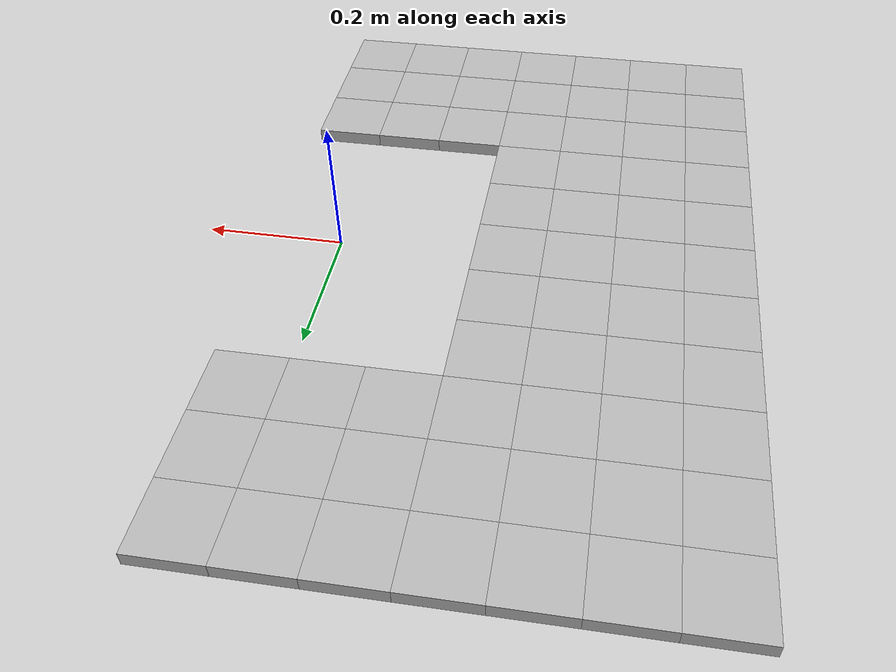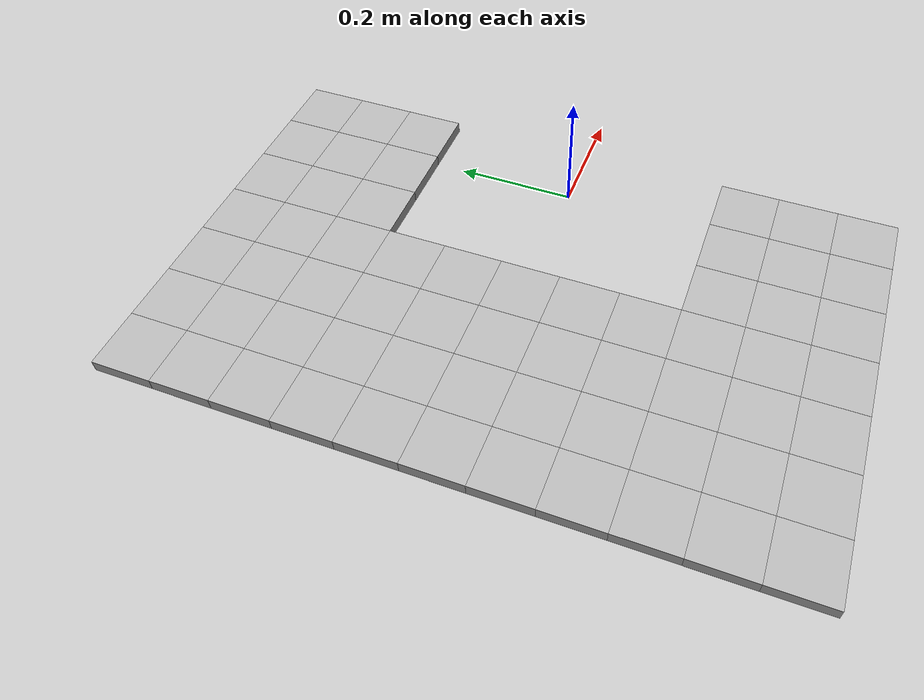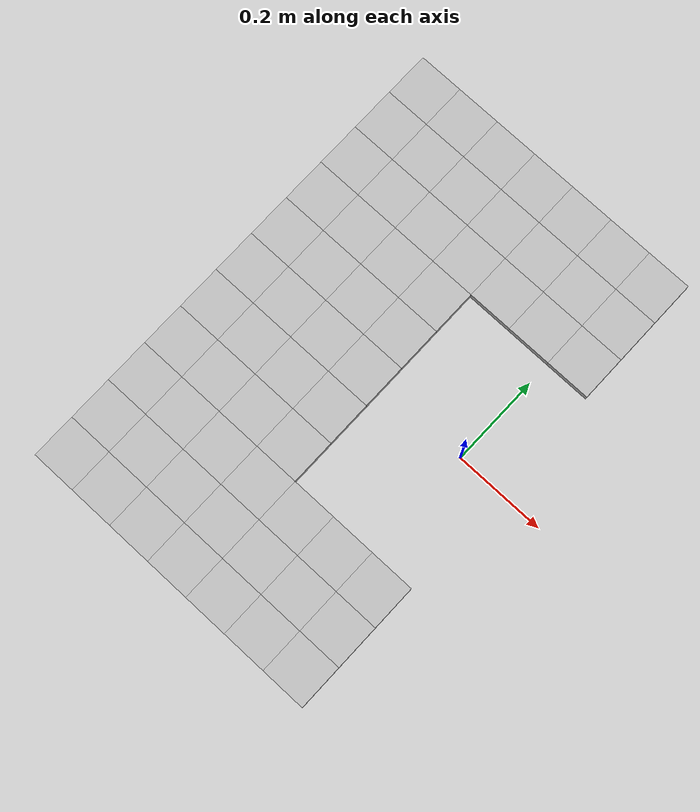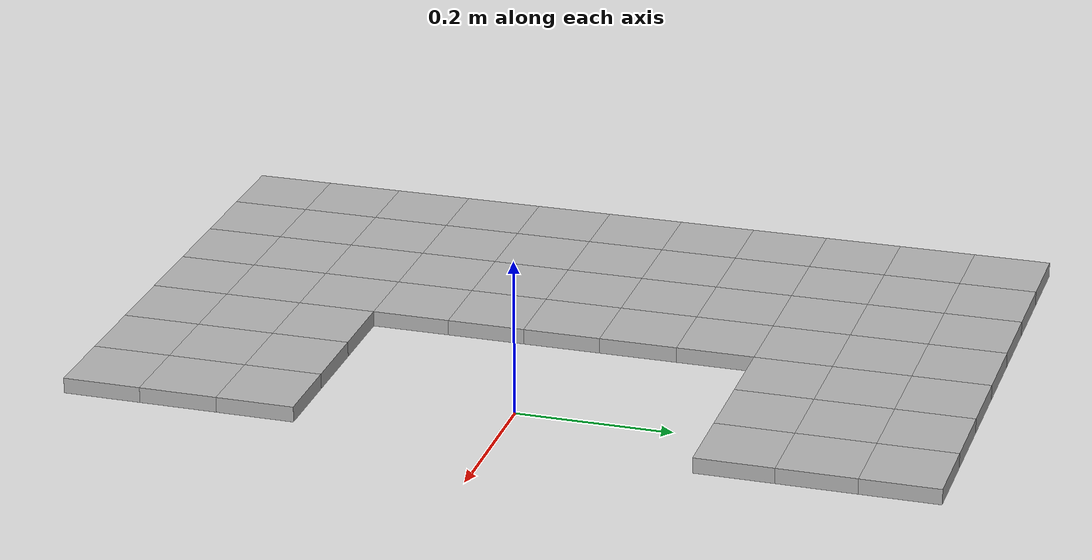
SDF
<sdf version="1.6">
 <model>
  <model name="object-golf-tile-0.0-0.0-new">
   <pose frame="tile-frame">-0.55 -0.5 0.01 0 0 0</pose>
   <link name="link_1">
    <inertial>
     <mass>0.0001</mass>
     <inertia><ixx>1e-6</ixx><ixy>0</ixy><ixz>0</ixz><iyy>1e-6</iyy><iyz>0</iyz><izz>1e-6</izz></inertia>
    </inertial>
    <visual name="visual">
     <geometry><box><size>0.1 0.1 0.02</size></box></geometry>
     <material>
      <ambient>0 0.6 0 0</ambient>
      <diffuse>0.7 0.7 0.7 1</diffuse>
      <specular>0.01 0.01 0.01 1</specular>
      <emissive>0 0 0 1</emissive>
     </material>
    </visual>
    <collision name="collision">
     <geometry><box><size>0.1 0.1 0.02</size></box></geometry>
     <surface><friction><ode><mu>1</mu><mu2>1</mu2></ode></friction></surface>
    </collision>
   </link>
   <static>1</static>
  </model>
  <model name="object-golf-tile-0.0-1.0-new">
   <pose frame="tile-frame">-0.55 -0.4 0.01 0 0 0</pose>
   <link name="link_1">
    <inertial>
     <mass>0.0001</mass>
     <inertia><ixx>1e-6</ixx><ixy>0</ixy><ixz>0</ixz><iyy>1e-6</iyy><iyz>0</iyz><izz>1e-6</izz></inertia>
    </inertial>
    <visual name="visual">
     <geometry><box><size>0.1 0.1 0.02</size></box></geometry>
     <material>
      <ambient>0 0.6 0 0</ambient>
      <diffuse>0.7 0.7 0.7 1</diffuse>
      <specular>0.01 0.01 0.01 1</specular>
      <emissive>0 0 0 1</emissive>
     </material>
    </visual>
    <collision name="collision">
     <geometry><box><size>0.1 0.1 0.02</size></box></geometry>
     <surface><friction><ode><mu>1</mu><mu2>1</mu2></ode></friction></surface>
    </collision>
   </link>
   <static>1</static>
  </model>
  <model name="object-golf-tile-0.0-2.0-new">
   <pose frame="tile-frame">-0.55 -0.3 0.01 0 0 0</pose>
   <link name="link_1">
    <inertial>
     <mass>0.0001</mass>
     <inertia><ixx>1e-6</ixx><ixy>0</ixy><ixz>0</ixz><iyy>1e-6</iyy><iyz>0</iyz><izz>1e-6</izz></inertia>
    </inertial>
    <visual name="visual">
     <geometry><box><size>0.1 0.1 0.02</size></box></geometry>
     <material>
      <ambient>0 0.6 0 0</ambient>
      <diffuse>0.7 0.7 0.7 1</diffuse>
      <specular>0.01 0.01 0.01 1</specular>
      <emissive>0 0 0 1</emissive>
     </material>
    </visual>
    <collision name="collision">
     <geometry><box><size>0.1 0.1 0.02</size></box></geometry>
     <surface><friction><ode><mu>1</mu><mu2>1</mu2></ode></friction></surface>
    </collision>
   </link>
   <static>1</static>
  </model>
  <model name="object-golf-tile-0.0-3.0-new">
   <pose frame="tile-frame">-0.55 -0.2 0.01 0 0 0</pose>
   <link name="link_1">
    <inertial>
     <mass>0.0001</mass>
     <inertia><ixx>1e-6</ixx><ixy>0</ixy><ixz>0</ixz><iyy>1e-6</iyy><iyz>0</iyz><izz>1e-6</izz></inertia>
    </inertial>
    <visual name="visual">
     <geometry><box><size>0.1 0.1 0.02</size></box></geometry>
     <material>
      <ambient>0 0.6 0 0</ambient>
      <diffuse>0.7 0.7 0.7 1</diffuse>
      <specular>0.01 0.01 0.01 1</specular>
      <emissive>0 0 0 1</emissive>
     </material>
    </visual>
    <collision name="collision">
     <geometry><box><size>0.1 0.1 0.02</size></box></geometry>
     <surface><friction><ode><mu>1</mu><mu2>1</mu2></ode></friction></surface>
    </collision>
   </link>
   <static>1</static>
  </model>
  <model name="object-golf-tile-0.0-4.0-new">
   <pose frame="tile-frame">-0.55 -0.1 0.01 0 0 0</pose>
   <link name="link_1">
    <inertial>
     <mass>0.0001</mass>
     <inertia><ixx>1e-6</ixx><ixy>0</ixy><ixz>0</ixz><iyy>1e-6</iyy><iyz>0</iyz><izz>1e-6</izz></inertia>
    </inertial>
    <visual name="visual">
     <geometry><box><size>0.1 0.1 0.02</size></box></geometry>
     <material>
      <ambient>0 0.6 0 0</ambient>
      <diffuse>0.7 0.7 0.7 1</diffuse>
      <specular>0.01 0.01 0.01 1</specular>
      <emissive>0 0 0 1</emissive>
     </material>
    </visual>
    <collision name="collision">
     <geometry><box><size>0.1 0.1 0.02</size></box></geometry>
     <surface><friction><ode><mu>1</mu><mu2>1</mu2></ode></friction></surface>
    </collision>
   </link>
   <static>1</static>
  </model>
  <model name="object-golf-tile-0.0-5.0-new">
   <pose frame="tile-frame">-0.55 0.0 0.01 0 0 0</pose>
   <link name="link_1">
    <inertial>
     <mass>0.0001</mass>
     <inertia><ixx>1e-6</ixx><ixy>0</ixy><ixz>0</ixz><iyy>1e-6</iyy><iyz>0</iyz><izz>1e-6</izz></inertia>
    </inertial>
    <visual name="visual">
     <geometry><box><size>0.1 0.1 0.02</size></box></geometry>
     <material>
      <ambient>0 0.6 0 0</ambient>
      <diffuse>0.7 0.7 0.7 1</diffuse>
      <specular>0.01 0.01 0.01 1</specular>
      <emissive>0 0 0 1</emissive>
     </material>
    </visual>
    <collision name="collision">
     <geometry><box><size>0.1 0.1 0.02</size></box></geometry>
     <surface><friction><ode><mu>1</mu><mu2>1</mu2></ode></friction></surface>
    </collision>
   </link>
   <static>1</static>
  </model>
  <model name="object-golf-tile-0.0-6.0-new">
   <pose frame="tile-frame">-0.55 0.1 0.01 0 0 0</pose>
   <link name="link_1">
    <inertial>
     <mass>0.0001</mass>
     <inertia><ixx>1e-6</ixx><ixy>0</ixy><ixz>0</ixz><iyy>1e-6</iyy><iyz>0</iyz><izz>1e-6</izz></inertia>
    </inertial>
    <visual name="visual">
     <geometry><box><size>0.1 0.1 0.02</size></box></geometry>
     <material>
      <ambient>0 0.6 0 0</ambient>
      <diffuse>0.7 0.7 0.7 1</diffuse>
      <specular>0.01 0.01 0.01 1</specular>
      <emissive>0 0 0 1</emissive>
     </material>
    </visual>
    <collision name="collision">
     <geometry><box><size>0.1 0.1 0.02</size></box></geometry>
     <surface><friction><ode><mu>1</mu><mu2>1</mu2></ode></friction></surface>
    </collision>
   </link>
   <static>1</static>
  </model>
  <model name="object-golf-tile-0.0-7.0-new">
   <pose frame="tile-frame">-0.55 0.2 0.01 0 0 0</pose>
   <link name="link_1">
    <inertial>
     <mass>0.0001</mass>
     <inertia><ixx>1e-6</ixx><ixy>0</ixy><ixz>0</ixz><iyy>1e-6</iyy><iyz>0</iyz><izz>1e-6</izz></inertia>
    </inertial>
    <visual name="visual">
     <geometry><box><size>0.1 0.1 0.02</size></box></geometry>
     <material>
      <ambient>0 0.6 0 0</ambient>
      <diffuse>0.7 0.7 0.7 1</diffuse>
      <specular>0.01 0.01 0.01 1</specular>
      <emissive>0 0 0 1</emissive>
     </material>
    </visual>
    <collision name="collision">
     <geometry><box><size>0.1 0.1 0.02</size></box></geometry>
     <surface><friction><ode><mu>1</mu><mu2>1</mu2></ode></friction></surface>
    </collision>
   </link>
   <static>1</static>
  </model>
  <model name="object-golf-tile-0.0-8.0-new">
   <pose frame="tile-frame">-0.55 0.3 0.01 0 0 0</pose>
   <link name="link_1">
    <inertial>
     <mass>0.0001</mass>
     <inertia><ixx>1e-6</ixx><ixy>0</ixy><ixz>0</ixz><iyy>1e-6</iyy><iyz>0</iyz><izz>1e-6</izz></inertia>
    </inertial>
    <visual name="visual">
     <geometry><box><size>0.1 0.1 0.02</size></box></geometry>
     <material>
      <ambient>0 0.6 0 0</ambient>
      <diffuse>0.7 0.7 0.7 1</diffuse>
      <specular>0.01 0.01 0.01 1</specular>
      <emissive>0 0 0 1</emissive>
     </material>
    </visual>
    <collision name="collision">
     <geometry><box><size>0.1 0.1 0.02</size></box></geometry>
     <surface><friction><ode><mu>1</mu><mu2>1</mu2></ode></friction></surface>
    </collision>
   </link>
   <static>1</static>
  </model>
  <model name="object-golf-tile-0.0-9.0-new">
   <pose frame="tile-frame">-0.55 0.4 0.01 0 0 0</pose>
   <link name="link_1">
    <inertial>
     <mass>0.0001</mass>
     <inertia><ixx>1e-6</ixx><ixy>0</ixy><ixz>0</ixz><iyy>1e-6</iyy><iyz>0</iyz><izz>1e-6</izz></inertia>
    </inertial>
    <visual name="visual">
     <geometry><box><size>0.1 0.1 0.02</size></box></geometry>
     <material>
      <ambient>0 0.6 0 0</ambient>
      <diffuse>0.7 0.7 0.7 1</diffuse>
      <specular>0.01 0.01 0.01 1</specular>
      <emissive>0 0 0 1</emissive>
     </material>
    </visual>
    <collision name="collision">
     <geometry><box><size>0.1 0.1 0.02</size></box></geometry>
     <surface><friction><ode><mu>1</mu><mu2>1</mu2></ode></friction></surface>
    </collision>
   </link>
   <static>1</static>
  </model>
  <model name="object-golf-tile-0.0-10.0-new">
   <pose frame="tile-frame">-0.55 0.5 0.01 0 0 0</pose>
   <link name="link_1">
    <inertial>
     <mass>0.0001</mass>
     <inertia><ixx>1e-6</ixx><ixy>0</ixy><ixz>0</ixz><iyy>1e-6</iyy><iyz>0</iyz><izz>1e-6</izz></inertia>
    </inertial>
    <visual name="visual">
     <geometry><box><size>0.1 0.1 0.02</size></box></geometry>
     <material>
      <ambient>0 0.6 0 0</ambient>
      <diffuse>0.7 0.7 0.7 1</diffuse>
      <specular>0.01 0.01 0.01 1</specular>
      <emissive>0 0 0 1</emissive>
     </material>
    </visual>
    <collision name="collision">
     <geometry><box><size>0.1 0.1 0.02</size></box></geometry>
     <surface><friction><ode><mu>1</mu><mu2>1</mu2></ode></friction></surface>
    </collision>
   </link>
   <static>1</static>
  </model>
  <model name="object-golf-tile-1.0-0.0-new">
   <pose frame="tile-frame">-0.45 -0.5 0.01 0 0 0</pose>
   <link name="link_1">
    <inertial>
     <mass>0.0001</mass>
     <inertia><ixx>1e-6</ixx><ixy>0</ixy><ixz>0</ixz><iyy>1e-6</iyy><iyz>0</iyz><izz>1e-6</izz></inertia>
    </inertial>
    <visual name="visual">
     <geometry><box><size>0.1 0.1 0.02</size></box></geometry>
     <material>
      <ambient>0 0.6 0 0</ambient>
      <diffuse>0.7 0.7 0.7 1</diffuse>
      <specular>0.01 0.01 0.01 1</specular>
      <emissive>0 0 0 1</emissive>
     </material>
    </visual>
    <collision name="collision">
     <geometry><box><size>0.1 0.1 0.02</size></box></geometry>
     <surface><friction><ode><mu>1</mu><mu2>1</mu2></ode></friction></surface>
    </collision>
   </link>
   <static>1</static>
  </model>
  <model name="object-golf-tile-1.0-1.0-new">
   <pose frame="tile-frame">-0.45 -0.4 0.01 0 0 0</pose>
   <link name="link_1">
    <inertial>
     <mass>0.0001</mass>
     <inertia><ixx>1e-6</ixx><ixy>0</ixy><ixz>0</ixz><iyy>1e-6</iyy><iyz>0</iyz><izz>1e-6</izz></inertia>
    </inertial>
    <visual name="visual">
     <geometry><box><size>0.1 0.1 0.02</size></box></geometry>
     <material>
      <ambient>0 0.6 0 0</ambient>
      <diffuse>0.7 0.7 0.7 1</diffuse>
      <specular>0.01 0.01 0.01 1</specular>
      <emissive>0 0 0 1</emissive>
     </material>
    </visual>
    <collision name="collision">
     <geometry><box><size>0.1 0.1 0.02</size></box></geometry>
     <surface><friction><ode><mu>1</mu><mu2>1</mu2></ode></friction></surface>
    </collision>
   </link>
   <static>1</static>
  </model>
  <model name="object-golf-tile-1.0-2.0-new">
   <pose frame="tile-frame">-0.45 -0.3 0.01 0 0 0</pose>
   <link name="link_1">
    <inertial>
     <mass>0.0001</mass>
     <inertia><ixx>1e-6</ixx><ixy>0</ixy><ixz>0</ixz><iyy>1e-6</iyy><iyz>0</iyz><izz>1e-6</izz></inertia>
    </inertial>
    <visual name="visual">
     <geometry><box><size>0.1 0.1 0.02</size></box></geometry>
     <material>
      <ambient>0 0.6 0 0</ambient>
      <diffuse>0.7 0.7 0.7 1</diffuse>
      <specular>0.01 0.01 0.01 1</specular>
      <emissive>0 0 0 1</emissive>
     </material>
    </visual>
    <collision name="collision">
     <geometry><box><size>0.1 0.1 0.02</size></box></geometry>
     <surface><friction><ode><mu>1</mu><mu2>1</mu2></ode></friction></surface>
    </collision>
   </link>
   <static>1</static>
  </model>
  <model name="object-golf-tile-1.0-3.0-new">
   <pose frame="tile-frame">-0.45 -0.2 0.01 0 0 0</pose>
   <link name="link_1">
    <inertial>
     <mass>0.0001</mass>
     <inertia><ixx>1e-6</ixx><ixy>0</ixy><ixz>0</ixz><iyy>1e-6</iyy><iyz>0</iyz><izz>1e-6</izz></inertia>
    </inertial>
    <visual name="visual">
     <geometry><box><size>0.1 0.1 0.02</size></box></geometry>
     <material>
      <ambient>0 0.6 0 0</ambient>
      <diffuse>0.7 0.7 0.7 1</diffuse>
      <specular>0.01 0.01 0.01 1</specular>
      <emissive>0 0 0 1</emissive>
     </material>
    </visual>
    <collision name="collision">
     <geometry><box><size>0.1 0.1 0.02</size></box></geometry>
     <surface><friction><ode><mu>1</mu><mu2>1</mu2></ode></friction></surface>
    </collision>
   </link>
   <static>1</static>
  </model>
  <model name="object-golf-tile-1.0-4.0-new">
   <pose frame="tile-frame">-0.45 -0.1 0.01 0 0 0</pose>
   <link name="link_1">
    <inertial>
     <mass>0.0001</mass>
     <inertia><ixx>1e-6</ixx><ixy>0</ixy><ixz>0</ixz><iyy>1e-6</iyy><iyz>0</iyz><izz>1e-6</izz></inertia>
    </inertial>
    <visual name="visual">
     <geometry><box><size>0.1 0.1 0.02</size></box></geometry>
     <material>
      <ambient>0 0.6 0 0</ambient>
      <diffuse>0.7 0.7 0.7 1</diffuse>
      <specular>0.01 0.01 0.01 1</specular>
      <emissive>0 0 0 1</emissive>
     </material>
    </visual>
    <collision name="collision">
     <geometry><box><size>0.1 0.1 0.02</size></box></geometry>
     <surface><friction><ode><mu>1</mu><mu2>1</mu2></ode></friction></surface>
    </collision>
   </link>
   <static>1</static>
  </model>
  <model name="object-golf-tile-1.0-5.0-new">
   <pose frame="tile-frame">-0.45 0.0 0.01 0 0 0</pose>
   <link name="link_1">
    <inertial>
     <mass>0.0001</mass>
     <inertia><ixx>1e-6</ixx><ixy>0</ixy><ixz>0</ixz><iyy>1e-6</iyy><iyz>0</iyz><izz>1e-6</izz></inertia>
    </inertial>
    <visual name="visual">
     <geometry><box><size>0.1 0.1 0.02</size></box></geometry>
     <material>
      <ambient>0 0.6 0 0</ambient>
      <diffuse>0.7 0.7 0.7 1</diffuse>
      <specular>0.01 0.01 0.01 1</specular>
      <emissive>0 0 0 1</emissive>
     </material>
    </visual>
    <collision name="collision">
     <geometry><box><size>0.1 0.1 0.02</size></box></geometry>
     <surface><friction><ode><mu>1</mu><mu2>1</mu2></ode></friction></surface>
    </collision>
   </link>
   <static>1</static>
  </model>
  <model name="object-golf-tile-1.0-6.0-new">
   <pose frame="tile-frame">-0.45 0.1 0.01 0 0 0</pose>
   <link name="link_1">
    <inertial>
     <mass>0.0001</mass>
     <inertia><ixx>1e-6</ixx><ixy>0</ixy><ixz>0</ixz><iyy>1e-6</iyy><iyz>0</iyz><izz>1e-6</izz></inertia>
    </inertial>
    <visual name="visual">
     <geometry><box><size>0.1 0.1 0.02</size></box></geometry>
     <material>
      <ambient>0 0.6 0 0</ambient>
      <diffuse>0.7 0.7 0.7 1</diffuse>
      <specular>0.01 0.01 0.01 1</specular>
      <emissive>0 0 0 1</emissive>
     </material>
    </visual>
    <collision name="collision">
     <geometry><box><size>0.1 0.1 0.02</size></box></geometry>
     <surface><friction><ode><mu>1</mu><mu2>1</mu2></ode></friction></surface>
    </collision>
   </link>
   <static>1</static>
  </model>
  <model name="object-golf-tile-1.0-7.0-new">
   <pose frame="tile-frame">-0.45 0.2 0.01 0 0 0</pose>
   <link name="link_1">
    <inertial>
     <mass>0.0001</mass>
     <inertia><ixx>1e-6</ixx><ixy>0</ixy><ixz>0</ixz><iyy>1e-6</iyy><iyz>0</iyz><izz>1e-6</izz></inertia>
    </inertial>
    <visual name="visual">
     <geometry><box><size>0.1 0.1 0.02</size></box></geometry>
     <material>
      <ambient>0 0.6 0 0</ambient>
      <diffuse>0.7 0.7 0.7 1</diffuse>
      <specular>0.01 0.01 0.01 1</specular>
      <emissive>0 0 0 1</emissive>
     </material>
    </visual>
    <collision name="collision">
     <geometry><box><size>0.1 0.1 0.02</size></box></geometry>
     <surface><friction><ode><mu>1</mu><mu2>1</mu2></ode></friction></surface>
    </collision>
   </link>
   <static>1</static>
  </model>
  <model name="object-golf-tile-1.0-8.0-new">
   <pose frame="tile-frame">-0.45 0.3 0.01 0 0 0</pose>
   <link name="link_1">
    <inertial>
     <mass>0.0001</mass>
     <inertia><ixx>1e-6</ixx><ixy>0</ixy><ixz>0</ixz><iyy>1e-6</iyy><iyz>0</iyz><izz>1e-6</izz></inertia>
    </inertial>
    <visual name="visual">
     <geometry><box><size>0.1 0.1 0.02</size></box></geometry>
     <material>
      <ambient>0 0.6 0 0</ambient>
      <diffuse>0.7 0.7 0.7 1</diffuse>
      <specular>0.01 0.01 0.01 1</specular>
      <emissive>0 0 0 1</emissive>
     </material>
    </visual>
    <collision name="collision">
     <geometry><box><size>0.1 0.1 0.02</size></box></geometry>
     <surface><friction><ode><mu>1</mu><mu2>1</mu2></ode></friction></surface>
    </collision>
   </link>
   <static>1</static>
  </model>
  <model name="object-golf-tile-1.0-9.0-new">
   <pose frame="tile-frame">-0.45 0.4 0.01 0 0 0</pose>
   <link name="link_1">
    <inertial>
     <mass>0.0001</mass>
     <inertia><ixx>1e-6</ixx><ixy>0</ixy><ixz>0</ixz><iyy>1e-6</iyy><iyz>0</iyz><izz>1e-6</izz></inertia>
    </inertial>
    <visual name="visual">
     <geometry><box><size>0.1 0.1 0.02</size></box></geometry>
     <material>
      <ambient>0 0.6 0 0</ambient>
      <diffuse>0.7 0.7 0.7 1</diffuse>
      <specular>0.01 0.01 0.01 1</specular>
      <emissive>0 0 0 1</emissive>
     </material>
    </visual>
    <collision name="collision">
     <geometry><box><size>0.1 0.1 0.02</size></box></geometry>
     <surface><friction><ode><mu>1</mu><mu2>1</mu2></ode></friction></surface>
    </collision>
   </link>
   <static>1</static>
  </model>
  <model name="object-golf-tile-1.0-10.0-new">
   <pose frame="tile-frame">-0.45 0.5 0.01 0 0 0</pose>
   <link name="link_1">
    <inertial>
     <mass>0.0001</mass>
     <inertia><ixx>1e-6</ixx><ixy>0</ixy><ixz>0</ixz><iyy>1e-6</iyy><iyz>0</iyz><izz>1e-6</izz></inertia>
    </inertial>
    <visual name="visual">
     <geometry><box><size>0.1 0.1 0.02</size></box></geometry>
     <material>
      <ambient>0 0.6 0 0</ambient>
      <diffuse>0.7 0.7 0.7 1</diffuse>
      <specular>0.01 0.01 0.01 1</specular>
      <emissive>0 0 0 1</emissive>
     </material>
    </visual>
    <collision name="collision">
     <geometry><box><size>0.1 0.1 0.02</size></box></geometry>
     <surface><friction><ode><mu>1</mu><mu2>1</mu2></ode></friction></surface>
    </collision>
   </link>
   <static>1</static>
  </model>
  <model name="object-golf-tile-2.0-0.0-new">
   <pose frame="tile-frame">-0.35 -0.5 0.01 0 0 0</pose>
   <link name="link_1">
    <inertial>
     <mass>0.0001</mass>
     <inertia><ixx>1e-6</ixx><ixy>0</ixy><ixz>0</ixz><iyy>1e-6</iyy><iyz>0</iyz><izz>1e-6</izz></inertia>
    </inertial>
    <visual name="visual">
     <geometry><box><size>0.1 0.1 0.02</size></box></geometry>
     <material>
      <ambient>0 0.6 0 0</ambient>
      <diffuse>0.7 0.7 0.7 1</diffuse>
      <specular>0.01 0.01 0.01 1</specular>
      <emissive>0 0 0 1</emissive>
     </material>
    </visual>
    <collision name="collision">
     <geometry><box><size>0.1 0.1 0.02</size></box></geometry>
     <surface><friction><ode><mu>1</mu><mu2>1</mu2></ode></friction></surface>
    </collision>
   </link>
   <static>1</static>
  </model>
  <model name="object-golf-tile-2.0-1.0-new">
   <pose frame="tile-frame">-0.35 -0.4 0.01 0 0 0</pose>
   <link name="link_1">
    <inertial>
     <mass>0.0001</mass>
     <inertia><ixx>1e-6</ixx><ixy>0</ixy><ixz>0</ixz><iyy>1e-6</iyy><iyz>0</iyz><izz>1e-6</izz></inertia>
    </inertial>
    <visual name="visual">
     <geometry><box><size>0.1 0.1 0.02</size></box></geometry>
     <material>
      <ambient>0 0.6 0 0</ambient>
      <diffuse>0.7 0.7 0.7 1</diffuse>
      <specular>0.01 0.01 0.01 1</specular>
      <emissive>0 0 0 1</emissive>
     </material>
    </visual>
    <collision name="collision">
     <geometry><box><size>0.1 0.1 0.02</size></box></geometry>
     <surface><friction><ode><mu>1</mu><mu2>1</mu2></ode></friction></surface>
    </collision>
   </link>
   <static>1</static>
  </model>
  <model name="object-golf-tile-2.0-2.0-new">
   <pose frame="tile-frame">-0.35 -0.3 0.01 0 0 0</pose>
   <link name="link_1">
    <inertial>
     <mass>0.0001</mass>
     <inertia><ixx>1e-6</ixx><ixy>0</ixy><ixz>0</ixz><iyy>1e-6</iyy><iyz>0</iyz><izz>1e-6</izz></inertia>
    </inertial>
    <visual name="visual">
     <geometry><box><size>0.1 0.1 0.02</size></box></geometry>
     <material>
      <ambient>0 0.6 0 0</ambient>
      <diffuse>0.7 0.7 0.7 1</diffuse>
      <specular>0.01 0.01 0.01 1</specular>
      <emissive>0 0 0 1</emissive>
     </material>
    </visual>
    <collision name="collision">
     <geometry><box><size>0.1 0.1 0.02</size></box></geometry>
     <surface><friction><ode><mu>1</mu><mu2>1</mu2></ode></friction></surface>
    </collision>
   </link>
   <static>1</static>
  </model>
  <model name="object-golf-tile-2.0-3.0-new">
   <pose frame="tile-frame">-0.35 -0.2 0.01 0 0 0</pose>
   <link name="link_1">
    <inertial>
     <mass>0.0001</mass>
     <inertia><ixx>1e-6</ixx><ixy>0</ixy><ixz>0</ixz><iyy>1e-6</iyy><iyz>0</iyz><izz>1e-6</izz></inertia>
    </inertial>
    <visual name="visual">
     <geometry><box><size>0.1 0.1 0.02</size></box></geometry>
     <material>
      <ambient>0 0.6 0 0</ambient>
      <diffuse>0.7 0.7 0.7 1</diffuse>
      <specular>0.01 0.01 0.01 1</specular>
      <emissive>0 0 0 1</emissive>
     </material>
    </visual>
    <collision name="collision">
     <geometry><box><size>0.1 0.1 0.02</size></box></geometry>
     <surface><friction><ode><mu>1</mu><mu2>1</mu2></ode></friction></surface>
    </collision>
   </link>
   <static>1</static>
  </model>
  <model name="object-golf-tile-2.0-4.0-new">
   <pose frame="tile-frame">-0.35 -0.1 0.01 0 0 0</pose>
   <link name="link_1">
    <inertial>
     <mass>0.0001</mass>
     <inertia><ixx>1e-6</ixx><ixy>0</ixy><ixz>0</ixz><iyy>1e-6</iyy><iyz>0</iyz><izz>1e-6</izz></inertia>
    </inertial>
    <visual name="visual">
     <geometry><box><size>0.1 0.1 0.02</size></box></geometry>
     <material>
      <ambient>0 0.6 0 0</ambient>
      <diffuse>0.7 0.7 0.7 1</diffuse>
      <specular>0.01 0.01 0.01 1</specular>
      <emissive>0 0 0 1</emissive>
     </material>
    </visual>
    <collision name="collision">
     <geometry><box><size>0.1 0.1 0.02</size></box></geometry>
     <surface><friction><ode><mu>1</mu><mu2>1</mu2></ode></friction></surface>
    </collision>
   </link>
   <static>1</static>
  </model>
  <model name="object-golf-tile-2.0-5.0-new">
   <pose frame="tile-frame">-0.35 0.0 0.01 0 0 0</pose>
   <link name="link_1">
    <inertial>
     <mass>0.0001</mass>
     <inertia><ixx>1e-6</ixx><ixy>0</ixy><ixz>0</ixz><iyy>1e-6</iyy><iyz>0</iyz><izz>1e-6</izz></inertia>
    </inertial>
    <visual name="visual">
     <geometry><box><size>0.1 0.1 0.02</size></box></geometry>
     <material>
      <ambient>0 0.6 0 0</ambient>
      <diffuse>0.7 0.7 0.7 1</diffuse>
      <specular>0.01 0.01 0.01 1</specular>
      <emissive>0 0 0 1</emissive>
     </material>
    </visual>
    <collision name="collision">
     <geometry><box><size>0.1 0.1 0.02</size></box></geometry>
     <surface><friction><ode><mu>1</mu><mu2>1</mu2></ode></friction></surface>
    </collision>
   </link>
   <static>1</static>
  </model>
  <model name="object-golf-tile-2.0-6.0-new">
   <pose frame="tile-frame">-0.35 0.1 0.01 0 0 0</pose>
   <link name="link_1">
    <inertial>
     <mass>0.0001</mass>
     <inertia><ixx>1e-6</ixx><ixy>0</ixy><ixz>0</ixz><iyy>1e-6</iyy><iyz>0</iyz><izz>1e-6</izz></inertia>
    </inertial>
    <visual name="visual">
     <geometry><box><size>0.1 0.1 0.02</size></box></geometry>
     <material>
      <ambient>0 0.6 0 0</ambient>
      <diffuse>0.7 0.7 0.7 1</diffuse>
      <specular>0.01 0.01 0.01 1</specular>
      <emissive>0 0 0 1</emissive>
     </material>
    </visual>
    <collision name="collision">
     <geometry><box><size>0.1 0.1 0.02</size></box></geometry>
     <surface><friction><ode><mu>1</mu><mu2>1</mu2></ode></friction></surface>
    </collision>
   </link>
   <static>1</static>
  </model>
  <model name="object-golf-tile-2.0-7.0-new">
   <pose frame="tile-frame">-0.35 0.2 0.01 0 0 0</pose>
   <link name="link_1">
    <inertial>
     <mass>0.0001</mass>
     <inertia><ixx>1e-6</ixx><ixy>0</ixy><ixz>0</ixz><iyy>1e-6</iyy><iyz>0</iyz><izz>1e-6</izz></inertia>
    </inertial>
    <visual name="visual">
     <geometry><box><size>0.1 0.1 0.02</size></box></geometry>
     <material>
      <ambient>0 0.6 0 0</ambient>
      <diffuse>0.7 0.7 0.7 1</diffuse>
      <specular>0.01 0.01 0.01 1</specular>
      <emissive>0 0 0 1</emissive>
     </material>
    </visual>
    <collision name="collision">
     <geometry><box><size>0.1 0.1 0.02</size></box></geometry>
     <surface><friction><ode><mu>1</mu><mu2>1</mu2></ode></friction></surface>
    </collision>
   </link>
   <static>1</static>
  </model>
  <model name="object-golf-tile-2.0-8.0-new">
   <pose frame="tile-frame">-0.35 0.3 0.01 0 0 0</pose>
   <link name="link_1">
    <inertial>
     <mass>0.0001</mass>
     <inertia><ixx>1e-6</ixx><ixy>0</ixy><ixz>0</ixz><iyy>1e-6</iyy><iyz>0</iyz><izz>1e-6</izz></inertia>
    </inertial>
    <visual name="visual">
     <geometry><box><size>0.1 0.1 0.02</size></box></geometry>
     <material>
      <ambient>0 0.6 0 0</ambient>
      <diffuse>0.7 0.7 0.7 1</diffuse>
      <specular>0.01 0.01 0.01 1</specular>
      <emissive>0 0 0 1</emissive>
     </material>
    </visual>
    <collision name="collision">
     <geometry><box><size>0.1 0.1 0.02</size></box></geometry>
     <surface><friction><ode><mu>1</mu><mu2>1</mu2></ode></friction></surface>
    </collision>
   </link>
   <static>1</static>
  </model>
  <model name="object-golf-tile-2.0-9.0-new">
   <pose frame="tile-frame">-0.35 0.4 0.01 0 0 0</pose>
   <link name="link_1">
    <inertial>
     <mass>0.0001</mass>
     <inertia><ixx>1e-6</ixx><ixy>0</ixy><ixz>0</ixz><iyy>1e-6</iyy><iyz>0</iyz><izz>1e-6</izz></inertia>
    </inertial>
    <visual name="visual">
     <geometry><box><size>0.1 0.1 0.02</size></box></geometry>
     <material>
      <ambient>0 0.6 0 0</ambient>
      <diffuse>0.7 0.7 0.7 1</diffuse>
      <specular>0.01 0.01 0.01 1</specular>
      <emissive>0 0 0 1</emissive>
     </material>
    </visual>
    <collision name="collision">
     <geometry><box><size>0.1 0.1 0.02</size></box></geometry>
     <surface><friction><ode><mu>1</mu><mu2>1</mu2></ode></friction></surface>
    </collision>
   </link>
   <static>1</static>
  </model>
  <model name="object-golf-tile-2.0-10.0-new">
   <pose frame="tile-frame">-0.35 0.5 0.01 0 0 0</pose>
   <link name="link_1">
    <inertial>
     <mass>0.0001</mass>
     <inertia><ixx>1e-6</ixx><ixy>0</ixy><ixz>0</ixz><iyy>1e-6</iyy><iyz>0</iyz><izz>1e-6</izz></inertia>
    </inertial>
    <visual name="visual">
     <geometry><box><size>0.1 0.1 0.02</size></box></geometry>
     <material>
      <ambient>0 0.6 0 0</ambient>
      <diffuse>0.7 0.7 0.7 1</diffuse>
      <specular>0.01 0.01 0.01 1</specular>
      <emissive>0 0 0 1</emissive>
     </material>
    </visual>
    <collision name="collision">
     <geometry><box><size>0.1 0.1 0.02</size></box></geometry>
     <surface><friction><ode><mu>1</mu><mu2>1</mu2></ode></friction></surface>
    </collision>
   </link>
   <static>1</static>
  </model>
  <model name="object-golf-tile-3.0-0.0-new">
   <pose frame="tile-frame">-0.25 -0.5 0.01 0 0 0</pose>
   <link name="link_1">
    <inertial>
     <mass>0.0001</mass>
     <inertia><ixx>1e-6</ixx><ixy>0</ixy><ixz>0</ixz><iyy>1e-6</iyy><iyz>0</iyz><izz>1e-6</izz></inertia>
    </inertial>
    <visual name="visual">
     <geometry><box><size>0.1 0.1 0.02</size></box></geometry>
     <material>
      <ambient>0 0.6 0 0</ambient>
      <diffuse>0.7 0.7 0.7 1</diffuse>
      <specular>0.01 0.01 0.01 1</specular>
      <emissive>0 0 0 1</emissive>
     </material>
    </visual>
    <collision name="collision">
     <geometry><box><size>0.1 0.1 0.02</size></box></geometry>
     <surface><friction><ode><mu>1</mu><mu2>1</mu2></ode></friction></surface>
    </collision>
   </link>
   <static>1</static>
  </model>
  <model name="object-golf-tile-3.0-1.0-new">
   <pose frame="tile-frame">-0.25 -0.4 0.01 0 0 0</pose>
   <link name="link_1">
    <inertial>
     <mass>0.0001</mass>
     <inertia><ixx>1e-6</ixx><ixy>0</ixy><ixz>0</ixz><iyy>1e-6</iyy><iyz>0</iyz><izz>1e-6</izz></inertia>
    </inertial>
    <visual name="visual">
     <geometry><box><size>0.1 0.1 0.02</size></box></geometry>
     <material>
      <ambient>0 0.6 0 0</ambient>
      <diffuse>0.7 0.7 0.7 1</diffuse>
      <specular>0.01 0.01 0.01 1</specular>
      <emissive>0 0 0 1</emissive>
     </material>
    </visual>
    <collision name="collision">
     <geometry><box><size>0.1 0.1 0.02</size></box></geometry>
     <surface><friction><ode><mu>1</mu><mu2>1</mu2></ode></friction></surface>
    </collision>
   </link>
   <static>1</static>
  </model>
  <model name="object-golf-tile-3.0-2.0-new">
   <pose frame="tile-frame">-0.25 -0.3 0.01 0 0 0</pose>
   <link name="link_1">
    <inertial>
     <mass>0.0001</mass>
     <inertia><ixx>1e-6</ixx><ixy>0</ixy><ixz>0</ixz><iyy>1e-6</iyy><iyz>0</iyz><izz>1e-6</izz></inertia>
    </inertial>
    <visual name="visual">
     <geometry><box><size>0.1 0.1 0.02</size></box></geometry>
     <material>
      <ambient>0 0.6 0 0</ambient>
      <diffuse>0.7 0.7 0.7 1</diffuse>
      <specular>0.01 0.01 0.01 1</specular>
      <emissive>0 0 0 1</emissive>
     </material>
    </visual>
    <collision name="collision">
     <geometry><box><size>0.1 0.1 0.02</size></box></geometry>
     <surface><friction><ode><mu>1</mu><mu2>1</mu2></ode></friction></surface>
    </collision>
   </link>
   <static>1</static>
  </model>
  <model name="object-golf-tile-3.0-3.0-new">
   <pose frame="tile-frame">-0.25 -0.2 0.01 0 0 0</pose>
   <link name="link_1">
    <inertial>
     <mass>0.0001</mass>
     <inertia><ixx>1e-6</ixx><ixy>0</ixy><ixz>0</ixz><iyy>1e-6</iyy><iyz>0</iyz><izz>1e-6</izz></inertia>
    </inertial>
    <visual name="visual">
     <geometry><box><size>0.1 0.1 0.02</size></box></geometry>
     <material>
      <ambient>0 0.6 0 0</ambient>
      <diffuse>0.7 0.7 0.7 1</diffuse>
      <specular>0.01 0.01 0.01 1</specular>
      <emissive>0 0 0 1</emissive>
     </material>
    </visual>
    <collision name="collision">
     <geometry><box><size>0.1 0.1 0.02</size></box></geometry>
     <surface><friction><ode><mu>1</mu><mu2>1</mu2></ode></friction></surface>
    </collision>
   </link>
   <static>1</static>
  </model>
  <model name="object-golf-tile-3.0-4.0-new">
   <pose frame="tile-frame">-0.25 -0.1 0.01 0 0 0</pose>
   <link name="link_1">
    <inertial>
     <mass>0.0001</mass>
     <inertia><ixx>1e-6</ixx><ixy>0</ixy><ixz>0</ixz><iyy>1e-6</iyy><iyz>0</iyz><izz>1e-6</izz></inertia>
    </inertial>
    <visual name="visual">
     <geometry><box><size>0.1 0.1 0.02</size></box></geometry>
     <material>
      <ambient>0 0.6 0 0</ambient>
      <diffuse>0.7 0.7 0.7 1</diffuse>
      <specular>0.01 0.01 0.01 1</specular>
      <emissive>0 0 0 1</emissive>
     </material>
    </visual>
    <collision name="collision">
     <geometry><box><size>0.1 0.1 0.02</size></box></geometry>
     <surface><friction><ode><mu>1</mu><mu2>1</mu2></ode></friction></surface>
    </collision>
   </link>
   <static>1</static>
  </model>
  <model name="object-golf-tile-3.0-5.0-new">
   <pose frame="tile-frame">-0.25 0.0 0.01 0 0 0</pose>
   <link name="link_1">
    <inertial>
     <mass>0.0001</mass>
     <inertia><ixx>1e-6</ixx><ixy>0</ixy><ixz>0</ixz><iyy>1e-6</iyy><iyz>0</iyz><izz>1e-6</izz></inertia>
    </inertial>
    <visual name="visual">
     <geometry><box><size>0.1 0.1 0.02</size></box></geometry>
     <material>
      <ambient>0 0.6 0 0</ambient>
      <diffuse>0.7 0.7 0.7 1</diffuse>
      <specular>0.01 0.01 0.01 1</specular>
      <emissive>0 0 0 1</emissive>
     </material>
    </visual>
    <collision name="collision">
     <geometry><box><size>0.1 0.1 0.02</size></box></geometry>
     <surface><friction><ode><mu>1</mu><mu2>1</mu2></ode></friction></surface>
    </collision>
   </link>
   <static>1</static>
  </model>
  <model name="object-golf-tile-3.0-6.0-new">
   <pose frame="tile-frame">-0.25 0.1 0.01 0 0 0</pose>
   <link name="link_1">
    <inertial>
     <mass>0.0001</mass>
     <inertia><ixx>1e-6</ixx><ixy>0</ixy><ixz>0</ixz><iyy>1e-6</iyy><iyz>0</iyz><izz>1e-6</izz></inertia>
    </inertial>
    <visual name="visual">
     <geometry><box><size>0.1 0.1 0.02</size></box></geometry>
     <material>
      <ambient>0 0.6 0 0</ambient>
      <diffuse>0.7 0.7 0.7 1</diffuse>
      <specular>0.01 0.01 0.01 1</specular>
      <emissive>0 0 0 1</emissive>
     </material>
    </visual>
    <collision name="collision">
     <geometry><box><size>0.1 0.1 0.02</size></box></geometry>
     <surface><friction><ode><mu>1</mu><mu2>1</mu2></ode></friction></surface>
    </collision>
   </link>
   <static>1</static>
  </model>
  <model name="object-golf-tile-3.0-7.0-new">
   <pose frame="tile-frame">-0.25 0.2 0.01 0 0 0</pose>
   <link name="link_1">
    <inertial>
     <mass>0.0001</mass>
     <inertia><ixx>1e-6</ixx><ixy>0</ixy><ixz>0</ixz><iyy>1e-6</iyy><iyz>0</iyz><izz>1e-6</izz></inertia>
    </inertial>
    <visual name="visual">
     <geometry><box><size>0.1 0.1 0.02</size></box></geometry>
     <material>
      <ambient>0 0.6 0 0</ambient>
      <diffuse>0.7 0.7 0.7 1</diffuse>
      <specular>0.01 0.01 0.01 1</specular>
      <emissive>0 0 0 1</emissive>
     </material>
    </visual>
    <collision name="collision">
     <geometry><box><size>0.1 0.1 0.02</size></box></geometry>
     <surface><friction><ode><mu>1</mu><mu2>1</mu2></ode></friction></surface>
    </collision>
   </link>
   <static>1</static>
  </model>
  <model name="object-golf-tile-3.0-8.0-new">
   <pose frame="tile-frame">-0.25 0.3 0.01 0 0 0</pose>
   <link name="link_1">
    <inertial>
     <mass>0.0001</mass>
     <inertia><ixx>1e-6</ixx><ixy>0</ixy><ixz>0</ixz><iyy>1e-6</iyy><iyz>0</iyz><izz>1e-6</izz></inertia>
    </inertial>
    <visual name="visual">
     <geometry><box><size>0.1 0.1 0.02</size></box></geometry>
     <material>
      <ambient>0 0.6 0 0</ambient>
      <diffuse>0.7 0.7 0.7 1</diffuse>
      <specular>0.01 0.01 0.01 1</specular>
      <emissive>0 0 0 1</emissive>
     </material>
    </visual>
    <collision name="collision">
     <geometry><box><size>0.1 0.1 0.02</size></box></geometry>
     <surface><friction><ode><mu>1</mu><mu2>1</mu2></ode></friction></surface>
    </collision>
   </link>
   <static>1</static>
  </model>
  <model name="object-golf-tile-3.0-9.0-new">
   <pose frame="tile-frame">-0.25 0.4 0.01 0 0 0</pose>
   <link name="link_1">
    <inertial>
     <mass>0.0001</mass>
     <inertia><ixx>1e-6</ixx><ixy>0</ixy><ixz>0</ixz><iyy>1e-6</iyy><iyz>0</iyz><izz>1e-6</izz></inertia>
    </inertial>
    <visual name="visual">
     <geometry><box><size>0.1 0.1 0.02</size></box></geometry>
     <material>
      <ambient>0 0.6 0 0</ambient>
      <diffuse>0.7 0.7 0.7 1</diffuse>
      <specular>0.01 0.01 0.01 1</specular>
      <emissive>0 0 0 1</emissive>
     </material>
    </visual>
    <collision name="collision">
     <geometry><box><size>0.1 0.1 0.02</size></box></geometry>
     <surface><friction><ode><mu>1</mu><mu2>1</mu2></ode></friction></surface>
    </collision>
   </link>
   <static>1</static>
  </model>
  <model name="object-golf-tile-3.0-10.0-new">
   <pose frame="tile-frame">-0.25 0.5 0.01 0 0 0</pose>
   <link name="link_1">
    <inertial>
     <mass>0.0001</mass>
     <inertia><ixx>1e-6</ixx><ixy>0</ixy><ixz>0</ixz><iyy>1e-6</iyy><iyz>0</iyz><izz>1e-6</izz></inertia>
    </inertial>
    <visual name="visual">
     <geometry><box><size>0.1 0.1 0.02</size></box></geometry>
     <material>
      <ambient>0 0.6 0 0</ambient>
      <diffuse>0.7 0.7 0.7 1</diffuse>
      <specular>0.01 0.01 0.01 1</specular>
      <emissive>0 0 0 1</emissive>
     </material>
    </visual>
    <collision name="collision">
     <geometry><box><size>0.1 0.1 0.02</size></box></geometry>
     <surface><friction><ode><mu>1</mu><mu2>1</mu2></ode></friction></surface>
    </collision>
   </link>
   <static>1</static>
  </model>
  <model name="object-golf-tile-4.0-0.0-new">
   <pose frame="tile-frame">-0.15 -0.5 0.01 0 0 0</pose>
   <link name="link_1">
    <inertial>
     <mass>0.0001</mass>
     <inertia><ixx>1e-6</ixx><ixy>0</ixy><ixz>0</ixz><iyy>1e-6</iyy><iyz>0</iyz><izz>1e-6</izz></inertia>
    </inertial>
    <visual name="visual">
     <geometry><box><size>0.1 0.1 0.02</size></box></geometry>
     <material>
      <ambient>0 0.6 0 0</ambient>
      <diffuse>0.7 0.7 0.7 1</diffuse>
      <specular>0.01 0.01 0.01 1</specular>
      <emissive>0 0 0 1</emissive>
     </material>
    </visual>
    <collision name="collision">
     <geometry><box><size>0.1 0.1 0.02</size></box></geometry>
     <surface><friction><ode><mu>1</mu><mu2>1</mu2></ode></friction></surface>
    </collision>
   </link>
   <static>1</static>
  </model>
  <model name="object-golf-tile-4.0-1.0-new">
   <pose frame="tile-frame">-0.15 -0.4 0.01 0 0 0</pose>
   <link name="link_1">
    <inertial>
     <mass>0.0001</mass>
     <inertia><ixx>1e-6</ixx><ixy>0</ixy><ixz>0</ixz><iyy>1e-6</iyy><iyz>0</iyz><izz>1e-6</izz></inertia>
    </inertial>
    <visual name="visual">
     <geometry><box><size>0.1 0.1 0.02</size></box></geometry>
     <material>
      <ambient>0 0.6 0 0</ambient>
      <diffuse>0.7 0.7 0.7 1</diffuse>
      <specular>0.01 0.01 0.01 1</specular>
      <emissive>0 0 0 1</emissive>
     </material>
    </visual>
    <collision name="collision">
     <geometry><box><size>0.1 0.1 0.02</size></box></geometry>
     <surface><friction><ode><mu>1</mu><mu2>1</mu2></ode></friction></surface>
    </collision>
   </link>
   <static>1</static>
  </model>
  <model name="object-golf-tile-4.0-2.0-new">
   <pose frame="tile-frame">-0.15 -0.3 0.01 0 0 0</pose>
   <link name="link_1">
    <inertial>
     <mass>0.0001</mass>
     <inertia><ixx>1e-6</ixx><ixy>0</ixy><ixz>0</ixz><iyy>1e-6</iyy><iyz>0</iyz><izz>1e-6</izz></inertia>
    </inertial>
    <visual name="visual">
     <geometry><box><size>0.1 0.1 0.02</size></box></geometry>
     <material>
      <ambient>0 0.6 0 0</ambient>
      <diffuse>0.7 0.7 0.7 1</diffuse>
      <specular>0.01 0.01 0.01 1</specular>
      <emissive>0 0 0 1</emissive>
     </material>
    </visual>
    <collision name="collision">
     <geometry><box><size>0.1 0.1 0.02</size></box></geometry>
     <surface><friction><ode><mu>1</mu><mu2>1</mu2></ode></friction></surface>
    </collision>
   </link>
   <static>1</static>
  </model>
  <model name="object-golf-tile-4.0-8.0-new">
   <pose frame="tile-frame">-0.15 0.3 0.01 0 0 0</pose>
   <link name="link_1">
    <inertial>
     <mass>0.0001</mass>
     <inertia><ixx>1e-6</ixx><ixy>0</ixy><ixz>0</ixz><iyy>1e-6</iyy><iyz>0</iyz><izz>1e-6</izz></inertia>
    </inertial>
    <visual name="visual">
     <geometry><box><size>0.1 0.1 0.02</size></box></geometry>
     <material>
      <ambient>0 0.6 0 0</ambient>
      <diffuse>0.7 0.7 0.7 1</diffuse>
      <specular>0.01 0.01 0.01 1</specular>
      <emissive>0 0 0 1</emissive>
     </material>
    </visual>
    <collision name="collision">
     <geometry><box><size>0.1 0.1 0.02</size></box></geometry>
     <surface><friction><ode><mu>1</mu><mu2>1</mu2></ode></friction></surface>
    </collision>
   </link>
   <static>1</static>
  </model>
  <model name="object-golf-tile-4.0-9.0-new">
   <pose frame="tile-frame">-0.15 0.4 0.01 0 0 0</pose>
   <link name="link_1">
    <inertial>
     <mass>0.0001</mass>
     <inertia><ixx>1e-6</ixx><ixy>0</ixy><ixz>0</ixz><iyy>1e-6</iyy><iyz>0</iyz><izz>1e-6</izz></inertia>
    </inertial>
    <visual name="visual">
     <geometry><box><size>0.1 0.1 0.02</size></box></geometry>
     <material>
      <ambient>0 0.6 0 0</ambient>
      <diffuse>0.7 0.7 0.7 1</diffuse>
      <specular>0.01 0.01 0.01 1</specular>
      <emissive>0 0 0 1</emissive>
     </material>
    </visual>
    <collision name="collision">
     <geometry><box><size>0.1 0.1 0.02</size></box></geometry>
     <surface><friction><ode><mu>1</mu><mu2>1</mu2></ode></friction></surface>
    </collision>
   </link>
   <static>1</static>
  </model>
  <model name="object-golf-tile-4.0-10.0-new">
   <pose frame="tile-frame">-0.15 0.5 0.01 0 0 0</pose>
   <link name="link_1">
    <inertial>
     <mass>0.0001</mass>
     <inertia><ixx>1e-6</ixx><ixy>0</ixy><ixz>0</ixz><iyy>1e-6</iyy><iyz>0</iyz><izz>1e-6</izz></inertia>
    </inertial>
    <visual name="visual">
     <geometry><box><size>0.1 0.1 0.02</size></box></geometry>
     <material>
      <ambient>0 0.6 0 0</ambient>
      <diffuse>0.7 0.7 0.7 1</diffuse>
      <specular>0.01 0.01 0.01 1</specular>
      <emissive>0 0 0 1</emissive>
     </material>
    </visual>
    <collision name="collision">
     <geometry><box><size>0.1 0.1 0.02</size></box></geometry>
     <surface><friction><ode><mu>1</mu><mu2>1</mu2></ode></friction></surface>
    </collision>
   </link>
   <static>1</static>
  </model>
  <model name="object-golf-tile-5.0-0.0-new">
   <pose frame="tile-frame">-0.05 -0.5 0.01 0 0 0</pose>
   <link name="link_1">
    <inertial>
     <mass>0.0001</mass>
     <inertia><ixx>1e-6</ixx><ixy>0</ixy><ixz>0</ixz><iyy>1e-6</iyy><iyz>0</iyz><izz>1e-6</izz></inertia>
    </inertial>
    <visual name="visual">
     <geometry><box><size>0.1 0.1 0.02</size></box></geometry>
     <material>
      <ambient>0 0.6 0 0</ambient>
      <diffuse>0.7 0.7 0.7 1</diffuse>
      <specular>0.01 0.01 0.01 1</specular>
      <emissive>0 0 0 1</emissive>
     </material>
    </visual>
    <collision name="collision">
     <geometry><box><size>0.1 0.1 0.02</size></box></geometry>
     <surface><friction><ode><mu>1</mu><mu2>1</mu2></ode></friction></surface>
    </collision>
   </link>
   <static>1</static>
  </model>
  <model name="object-golf-tile-5.0-1.0-new">
   <pose frame="tile-frame">-0.05 -0.4 0.01 0 0 0</pose>
   <link name="link_1">
    <inertial>
     <mass>0.0001</mass>
     <inertia><ixx>1e-6</ixx><ixy>0</ixy><ixz>0</ixz><iyy>1e-6</iyy><iyz>0</iyz><izz>1e-6</izz></inertia>
    </inertial>
    <visual name="visual">
     <geometry><box><size>0.1 0.1 0.02</size></box></geometry>
     <material>
      <ambient>0 0.6 0 0</ambient>
      <diffuse>0.7 0.7 0.7 1</diffuse>
      <specular>0.01 0.01 0.01 1</specular>
      <emissive>0 0 0 1</emissive>
     </material>
    </visual>
    <collision name="collision">
     <geometry><box><size>0.1 0.1 0.02</size></box></geometry>
     <surface><friction><ode><mu>1</mu><mu2>1</mu2></ode></friction></surface>
    </collision>
   </link>
   <static>1</static>
  </model>
  <model name="object-golf-tile-5.0-2.0-new">
   <pose frame="tile-frame">-0.05 -0.3 0.01 0 0 0</pose>
   <link name="link_1">
    <inertial>
     <mass>0.0001</mass>
     <inertia><ixx>1e-6</ixx><ixy>0</ixy><ixz>0</ixz><iyy>1e-6</iyy><iyz>0</iyz><izz>1e-6</izz></inertia>
    </inertial>
    <visual name="visual">
     <geometry><box><size>0.1 0.1 0.02</size></box></geometry>
     <material>
      <ambient>0 0.6 0 0</ambient>
      <diffuse>0.7 0.7 0.7 1</diffuse>
      <specular>0.01 0.01 0.01 1</specular>
      <emissive>0 0 0 1</emissive>
     </material>
    </visual>
    <collision name="collision">
     <geometry><box><size>0.1 0.1 0.02</size></box></geometry>
     <surface><friction><ode><mu>1</mu><mu2>1</mu2></ode></friction></surface>
    </collision>
   </link>
   <static>1</static>
  </model>
  <model name="object-golf-tile-5.0-8.0-new">
   <pose frame="tile-frame">-0.05 0.3 0.01 0 0 0</pose>
   <link name="link_1">
    <inertial>
     <mass>0.0001</mass>
     <inertia><ixx>1e-6</ixx><ixy>0</ixy><ixz>0</ixz><iyy>1e-6</iyy><iyz>0</iyz><izz>1e-6</izz></inertia>
    </inertial>
    <visual name="visual">
     <geometry><box><size>0.1 0.1 0.02</size></box></geometry>
     <material>
      <ambient>0 0.6 0 0</ambient>
      <diffuse>0.7 0.7 0.7 1</diffuse>
      <specular>0.01 0.01 0.01 1</specular>
      <emissive>0 0 0 1</emissive>
     </material>
    </visual>
    <collision name="collision">
     <geometry><box><size>0.1 0.1 0.02</size></box></geometry>
     <surface><friction><ode><mu>1</mu><mu2>1</mu2></ode></friction></surface>
    </collision>
   </link>
   <static>1</static>
  </model>
  <model name="object-golf-tile-5.0-9.0-new">
   <pose frame="tile-frame">-0.05 0.4 0.01 0 0 0</pose>
   <link name="link_1">
    <inertial>
     <mass>0.0001</mass>
     <inertia><ixx>1e-6</ixx><ixy>0</ixy><ixz>0</ixz><iyy>1e-6</iyy><iyz>0</iyz><izz>1e-6</izz></inertia>
    </inertial>
    <visual name="visual">
     <geometry><box><size>0.1 0.1 0.02</size></box></geometry>
     <material>
      <ambient>0 0.6 0 0</ambient>
      <diffuse>0.7 0.7 0.7 1</diffuse>
      <specular>0.01 0.01 0.01 1</specular>
      <emissive>0 0 0 1</emissive>
     </material>
    </visual>
    <collision name="collision">
     <geometry><box><size>0.1 0.1 0.02</size></box></geometry>
     <surface><friction><ode><mu>1</mu><mu2>1</mu2></ode></friction></surface>
    </collision>
   </link>
   <static>1</static>
  </model>
  <model name="object-golf-tile-5.0-10.0-new">
   <pose frame="tile-frame">-0.05 0.5 0.01 0 0 0</pose>
   <link name="link_1">
    <inertial>
     <mass>0.0001</mass>
     <inertia><ixx>1e-6</ixx><ixy>0</ixy><ixz>0</ixz><iyy>1e-6</iyy><iyz>0</iyz><izz>1e-6</izz></inertia>
    </inertial>
    <visual name="visual">
     <geometry><box><size>0.1 0.1 0.02</size></box></geometry>
     <material>
      <ambient>0 0.6 0 0</ambient>
      <diffuse>0.7 0.7 0.7 1</diffuse>
      <specular>0.01 0.01 0.01 1</specular>
      <emissive>0 0 0 1</emissive>
     </material>
    </visual>
    <collision name="collision">
     <geometry><box><size>0.1 0.1 0.02</size></box></geometry>
     <surface><friction><ode><mu>1</mu><mu2>1</mu2></ode></friction></surface>
    </collision>
   </link>
   <static>1</static>
  </model>
  <model name="object-golf-tile-6.0-0.0-new">
   <pose frame="tile-frame">0.05 -0.5 0.01 0 0 0</pose>
   <link name="link_1">
    <inertial>
     <mass>0.0001</mass>
     <inertia><ixx>1e-6</ixx><ixy>0</ixy><ixz>0</ixz><iyy>1e-6</iyy><iyz>0</iyz><izz>1e-6</izz></inertia>
    </inertial>
    <visual name="visual">
     <geometry><box><size>0.1 0.1 0.02</size></box></geometry>
     <material>
      <ambient>0 0.6 0 0</ambient>
      <diffuse>0.7 0.7 0.7 1</diffuse>
      <specular>0.01 0.01 0.01 1</specular>
      <emissive>0 0 0 1</emissive>
     </material>
    </visual>
    <collision name="collision">
     <geometry><box><size>0.1 0.1 0.02</size></box></geometry>
     <surface><friction><ode><mu>1</mu><mu2>1</mu2></ode></friction></surface>
    </collision>
   </link>
   <static>1</static>
  </model>
  <model name="object-golf-tile-6.0-1.0-new">
   <pose frame="tile-frame">0.05 -0.4 0.01 0 0 0</pose>
   <link name="link_1">
    <inertial>
     <mass>0.0001</mass>
     <inertia><ixx>1e-6</ixx><ixy>0</ixy><ixz>0</ixz><iyy>1e-6</iyy><iyz>0</iyz><izz>1e-6</izz></inertia>
    </inertial>
    <visual name="visual">
     <geometry><box><size>0.1 0.1 0.02</size></box></geometry>
     <material>
      <ambient>0 0.6 0 0</ambient>
      <diffuse>0.7 0.7 0.7 1</diffuse>
      <specular>0.01 0.01 0.01 1</specular>
      <emissive>0 0 0 1</emissive>
     </material>
    </visual>
    <collision name="collision">
     <geometry><box><size>0.1 0.1 0.02</size></box></geometry>
     <surface><friction><ode><mu>1</mu><mu2>1</mu2></ode></friction></surface>
    </collision>
   </link>
   <static>1</static>
  </model>
  <model name="object-golf-tile-6.0-2.0-new">
   <pose frame="tile-frame">0.05 -0.3 0.01 0 0 0</pose>
   <link name="link_1">
    <inertial>
     <mass>0.0001</mass>
     <inertia><ixx>1e-6</ixx><ixy>0</ixy><ixz>0</ixz><iyy>1e-6</iyy><iyz>0</iyz><izz>1e-6</izz></inertia>
    </inertial>
    <visual name="visual">
     <geometry><box><size>0.1 0.1 0.02</size></box></geometry>
     <material>
      <ambient>0 0.6 0 0</ambient>
      <diffuse>0.7 0.7 0.7 1</diffuse>
      <specular>0.01 0.01 0.01 1</specular>
      <emissive>0 0 0 1</emissive>
     </material>
    </visual>
    <collision name="collision">
     <geometry><box><size>0.1 0.1 0.02</size></box></geometry>
     <surface><friction><ode><mu>1</mu><mu2>1</mu2></ode></friction></surface>
    </collision>
   </link>
   <static>1</static>
  </model>
  <model name="object-golf-tile-6.0-8.0-new">
   <pose frame="tile-frame">0.05 0.3 0.01 0 0 0</pose>
   <link name="link_1">
    <inertial>
     <mass>0.0001</mass>
     <inertia><ixx>1e-6</ixx><ixy>0</ixy><ixz>0</ixz><iyy>1e-6</iyy><iyz>0</iyz><izz>1e-6</izz></inertia>
    </inertial>
    <visual name="visual">
     <geometry><box><size>0.1 0.1 0.02</size></box></geometry>
     <material>
      <ambient>0 0.6 0 0</ambient>
      <diffuse>0.7 0.7 0.7 1</diffuse>
      <specular>0.01 0.01 0.01 1</specular>
      <emissive>0 0 0 1</emissive>
     </material>
    </visual>
    <collision name="collision">
     <geometry><box><size>0.1 0.1 0.02</size></box></geometry>
     <surface><friction><ode><mu>1</mu><mu2>1</mu2></ode></friction></surface>
    </collision>
   </link>
   <static>1</static>
  </model>
  <model name="object-golf-tile-6.0-9.0-new">
   <pose frame="tile-frame">0.05 0.4 0.01 0 0 0</pose>
   <link name="link_1">
    <inertial>
     <mass>0.0001</mass>
     <inertia><ixx>1e-6</ixx><ixy>0</ixy><ixz>0</ixz><iyy>1e-6</iyy><iyz>0</iyz><izz>1e-6</izz></inertia>
    </inertial>
    <visual name="visual">
     <geometry><box><size>0.1 0.1 0.02</size></box></geometry>
     <material>
      <ambient>0 0.6 0 0</ambient>
      <diffuse>0.7 0.7 0.7 1</diffuse>
      <specular>0.01 0.01 0.01 1</specular>
      <emissive>0 0 0 1</emissive>
     </material>
    </visual>
    <collision name="collision">
     <geometry><box><size>0.1 0.1 0.02</size></box></geometry>
     <surface><friction><ode><mu>1</mu><mu2>1</mu2></ode></friction></surface>
    </collision>
   </link>
   <static>1</static>
  </model>
  <model name="object-golf-tile-6.0-10.0-new">
   <pose frame="tile-frame">0.05 0.5 0.01 0 0 0</pose>
   <link name="link_1">
    <inertial>
     <mass>0.0001</mass>
     <inertia><ixx>1e-6</ixx><ixy>0</ixy><ixz>0</ixz><iyy>1e-6</iyy><iyz>0</iyz><izz>1e-6</izz></inertia>
    </inertial>
    <visual name="visual">
     <geometry><box><size>0.1 0.1 0.02</size></box></geometry>
     <material>
      <ambient>0 0.6 0 0</ambient>
      <diffuse>0.7 0.7 0.7 1</diffuse>
      <specular>0.01 0.01 0.01 1</specular>
      <emissive>0 0 0 1</emissive>
     </material>
    </visual>
    <collision name="collision">
     <geometry><box><size>0.1 0.1 0.02</size></box></geometry>
     <surface><friction><ode><mu>1</mu><mu2>1</mu2></ode></friction></surface>
    </collision>
   </link>
   <static>1</static>
  </model>
 </model>
</sdf>
